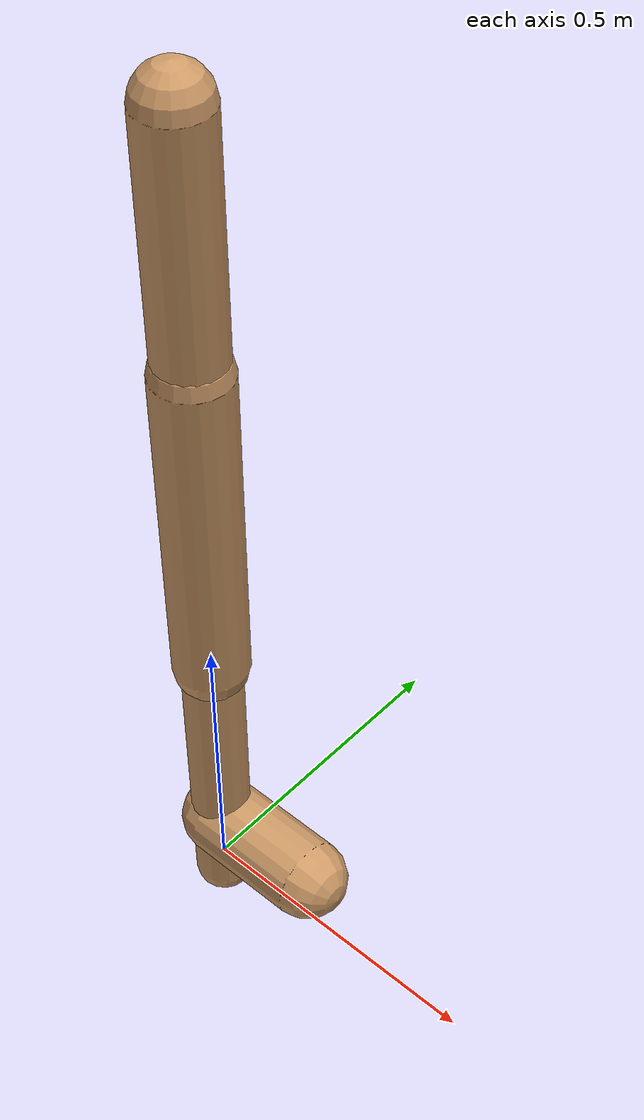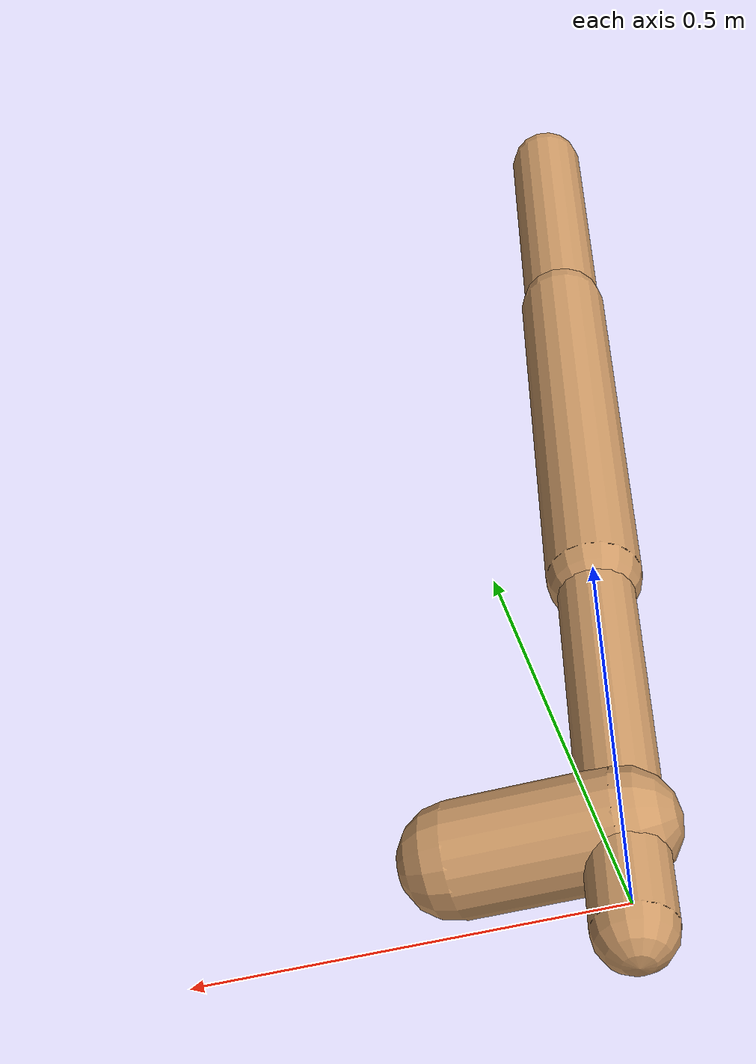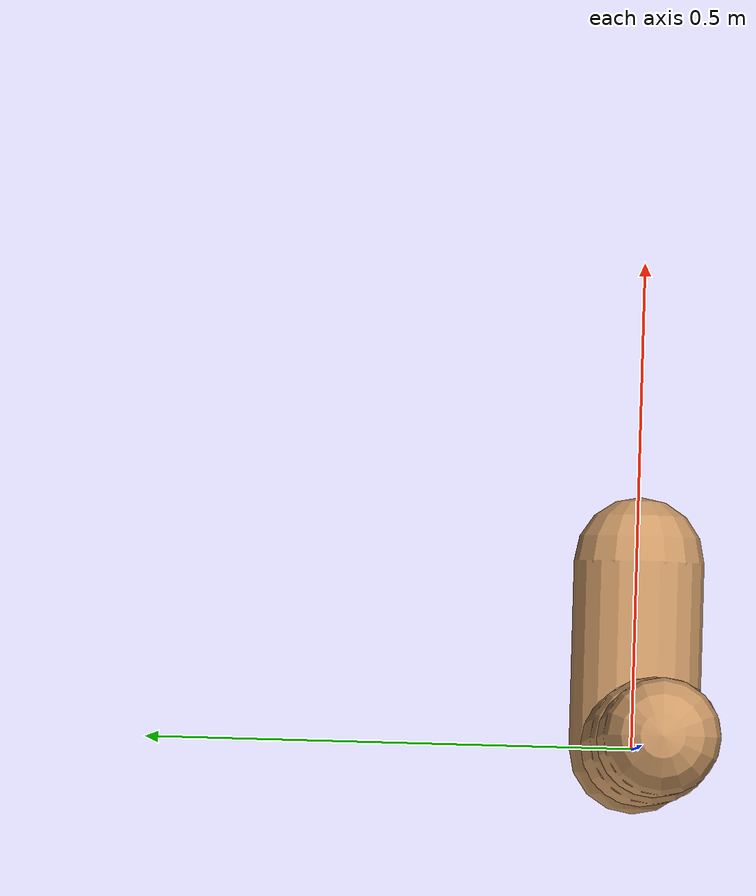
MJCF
<mujoco model="walker2d">
  <compiler angle="degree" coordinate="global" inertiafromgeom="true" />
  <default>
    <joint armature="0.01" damping=".1" limited="true" />
    <geom conaffinity="0" condim="3" contype="1" density="1000" friction="0.8 .1 .1" rgba="0.8 0.6 .4 1" />
  </default>
  <option integrator="RK4" timestep="0.002" />
  <worldbody>

    <body name="torso" pos="0 0 0.24782808273307363">
      <joint armature="0" axis="1 0 0" damping="0" limited="false" name="ignorex" pos="0 0 0" stiffness="0" type="slide" />
      <joint armature="0" axis="0 0 1" damping="0" limited="false" name="ignorez" pos="0 0 0" ref="1.25" stiffness="0" type="slide" />
      <joint armature="0" axis="0 1 0" damping="0" limited="false" name="ignorey" pos="0 0 0" stiffness="0" type="hinge" />
      <geom fromto="0 0 1.45 0 0 1.05" name="torso_geom" size="0.05450468525599775" type="capsule" />
      <body name="thigh">
        <joint axis="0 -1 0" name="thigh_joint" pos="0 0 1.05" range="-150 0" type="hinge" />
        <geom fromto="0.0 0.0 1.05 0.0 0.0 0.4826077502843335" name="thigh_geom" size="0.06051835965423308" type="capsule" />
        <body name="leg" pos="0.0 0.0 -0.11739224971566647">
          <joint axis="0 -1 0" name="leg_joint" pos="0 0 0.6" range="-150 0" type="hinge" />
          <geom fromto="0.0 0.0 0.6 0.0 0.0 -0.030435833017407155" name="leg_geom" size="0.04841468772338647" type="capsule" />
          <body name="foot" pos="0.0 0.0 -0.13043583301740716">
            <joint axis="0 -1 0" name="foot_joint" pos="0 0 0.1" range="-45 45" type="hinge" />
            <geom fromto="0.0 0.0 0.1 0.19056686895988456 0.0 0.1" name="foot_geom" size="0.06643658131400178" type="capsule" />
          </body>
        </body>
      </body>

      <body name="thigh_left">
        <joint axis="0 -1 0" name="thigh_left_joint" pos="0 0 1.05" range="-150 0" type="hinge" />
        <geom fromto="0.0 0.0 1.05 0.0 0.0 0.4826077502843335" name="thigh_left_geom" rgba=".7 .3 .6 1" size="0.06051835965423308" type="capsule" />
        <body name="leg_left" pos="0.0 0.0 -0.11739224971566647">
          <joint axis="0 -1 0" name="leg_left_joint" pos="0 0 0.6" range="-150 0" type="hinge" />
          <geom fromto="0.0 0.0 0.6 0.0 0.0 -0.030435833017407155" name="leg_left_geom" rgba=".7 .3 .6 1" size="0.04841468772338647" type="capsule" />
          <body name="foot_left" pos="0.0 0.0 -0.13043583301740716">
            <joint axis="0 -1 0" name="foot_left_joint" pos="0 0 0.1" range="-45 45" type="hinge" />
            <geom fromto="0.0 0.0 0.1 0.19056686895988456 0.0 0.1" name="foot_left_geom" rgba=".7 .3 .6 1" size="0.06643658131400178" type="capsule" />
          </body>
        </body>
      </body>
    </body>
  </worldbody>
  <actuator>

    <motor ctrllimited="true" ctrlrange="-1.0 1.0" gear="100" joint="thigh_joint" />
    <motor ctrllimited="true" ctrlrange="-1.0 1.0" gear="100" joint="leg_joint" />
    <motor ctrllimited="true" ctrlrange="-1.0 1.0" gear="100" joint="foot_joint" />
    <motor ctrllimited="true" ctrlrange="-1.0 1.0" gear="100" joint="thigh_left_joint" />
    <motor ctrllimited="true" ctrlrange="-1.0 1.0" gear="100" joint="leg_left_joint" />
    <motor ctrllimited="true" ctrlrange="-1.0 1.0" gear="100" joint="foot_left_joint" />

  </actuator>
</mujoco>
